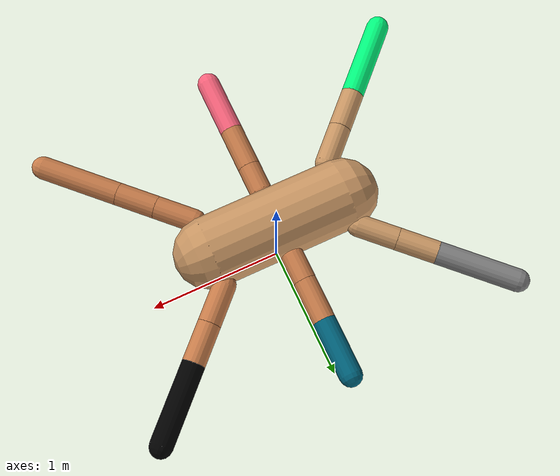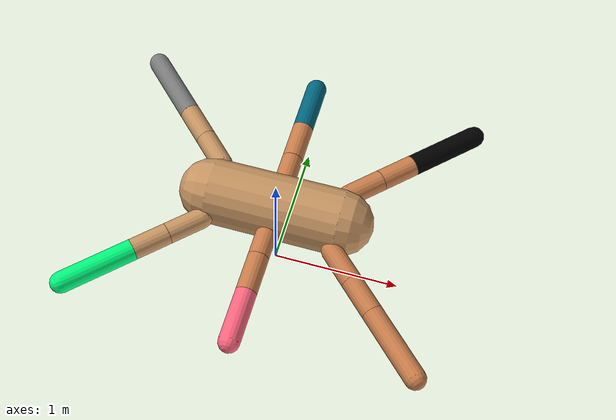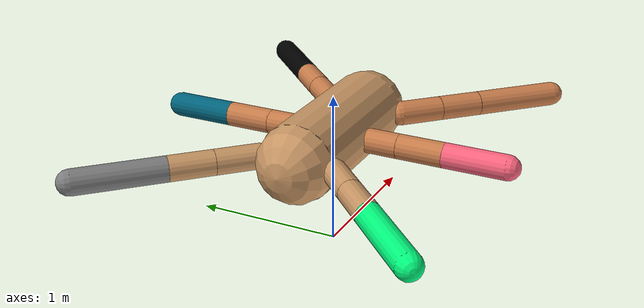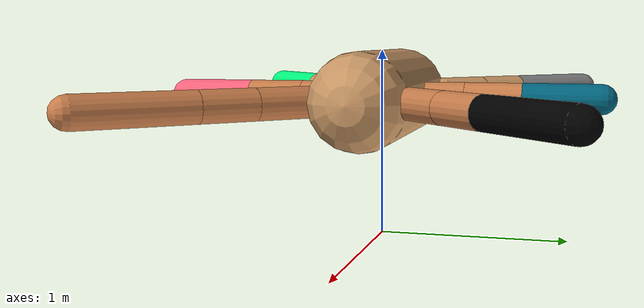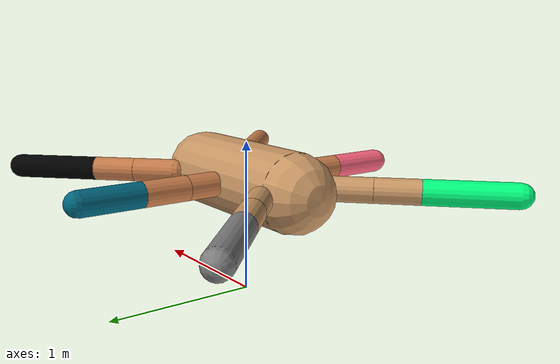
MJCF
<mujoco model="ant">
  <compiler angle="degree" coordinate="local" inertiafromgeom="true"/>
  <option integrator="RK4" timestep="0.01"/>
  <custom>
    <numeric data="0.0 0.0 0.55 1.0 0.0 0.0 0.0 0.0 1.0 0.0 -1.0 0.0 -1.0 0.0 1.0" name="init_qpos"/>
  </custom>
  <default>
    <joint armature="1" damping="1" limited="true"/>
    <geom conaffinity="0" condim="3" density="5.0" friction="1.5 0.1 0.1" margin="0.01" rgba="0.8 0.6 0.4 1"/>
  </default>
  <worldbody>
    <body name="torso" pos="0 0 0.75">
      <geom name="torso_geom" fromto="-0.5 0 0 0.5 0 0" size="0.25" type="capsule"/>
      <!--joint armature="0" damping="0" limited="false" margin="0.01" name="root" pos="0 0 0" type="free"/-->
      <body name="front_left_leg" pos="0.5 0.25 0">
        <geom fromto="0.0 0.0 0.0 0.2 0.2 0.0" name="aux_1_geom" size="0.08" type="capsule" rgba=".8 .5 .3 1"/>
        <body name="aux_1" pos="0.2 0.2 0">
          <joint axis="0 0 1" name="hip_1" pos="0.0 0.0 0.0" range="-40 40" type="hinge"/>
          <geom fromto="0.0 0.0 0.0 0.2 0.2 0.0" name="left_leg_geom" size="0.08" type="capsule" rgba=".8 .5 .3 1"/>
          <body pos="0.2 0.2 0" name="front_left_foot">
            <joint axis="-1 1 0" name="ankle_1" pos="0.0 0.0 0.0" range="30 100" type="hinge"/>
            <geom fromto="0.0 0.0 0.0 0.4 0.4 0.0" name="left_ankle_geom" size="0.08" type="capsule" rgba=".0 .0 .0 1"/>
          </body>
        </body>
      </body>
      <body name="front_right_leg" pos="0.5 -0.25 0">
        <geom fromto="0.0 0.0 0.0 0.2 -0.2 0.0" name="aux_4_geom" size="0.08" type="capsule" rgba=".8 .5 .3 1"/>
        <body name="aux_4" pos="0.2 -0.2 0">
          <joint axis="0 0 1" name="hip_4" pos="0.0 0.0 0.0" range="-40 40" type="hinge"/>
          <geom fromto="0.0 0.0 0.0 0.2 -0.2 0.0" name="front_right_leg_geom" size="0.08" type="capsule" rgba=".8 .5 .3 1"/>
          <body pos="0.2 -0.2 0" name="front_right_foot">
            <joint axis="1 1 0" name="ankle_4" pos="0.0 0.0 0.0" range="30 100" type="hinge"/>
            <geom fromto="0.0 0.0 0.0 0.4 -0.4 0.0" name="fourth_ankle_geom" size="0.08" type="capsule" rgba=".8 .5 .3 1"/>
          </body>
        </body>
      </body>
      <body name="mid_left_leg" pos="0.0 0.25 0">
        <geom fromto="0.0 0.0 0.0 0.0 0.2 0.0" name="aux_6_geom" size="0.08" type="capsule" rgba=".8 .5 .3 1"/>
        <body name="aux_6" pos="0.0 0.2 0">
          <joint axis="0 0 1" name="hip_6" pos="0.0 0.0 0.0" range="-45 45" type="hinge"/>
          <geom fromto="0.0 0.0 0.0 0.0 0.3 0.0" name="mid_left_leg_geom" size="0.08" type="capsule" rgba=".8 .5 .3 1"/>
          <body pos="0.0 0.3 0" name="mid_left_foot">
            <joint axis="-1 0 0" name="ankle_6" pos="0.0 0.0 0.0" range="30 100" type="hinge"/>
            <geom fromto="0.0 0.0 0.0 0.0 0.4 0.0" name="sixth_ankle_geom" size="0.08" type="capsule" rgba="0 .4 .5 1"/>
          </body>
        </body>
      </body>
      <body name="mid_right_leg" pos="0.0 -0.25 0">
        <geom fromto="0.0 0.0 0.0 0.0 -0.2 0.0" name="aux_5_geom" size="0.08" type="capsule" rgba=".8 .5 .3 1"/>
        <body name="aux_5" pos="0.0 -0.2 0">
          <joint axis="0 0 1" name="hip_5" pos="0.0 0.0 0.0" range="-45 45" type="hinge"/>
          <geom fromto="0.0 0.0 0.0 0.0 -0.3 0.0" name="mid_right_leg_geom" size="0.08" type="capsule" rgba=".8 .5 .3 1"/>
          <body pos="0.0 -0.3 0" name="mid_right_foot">
            <joint axis="1 0 0" name="ankle_5" pos="0.0 0.0 0.0" range="30 100" type="hinge"/>
            <geom fromto="0.0 0.0 0.0 0.0 -0.4 0.0" name="fith_ankle_geom" size="0.08" type="capsule" rgba="1 .4 .5 1"/>
          </body>
        </body>
      </body>
      <body name="back_left_leg" pos="-0.5 0.25 0">
        <geom fromto="0.0 0.0 0.0 -0.2 0.2 0.0" name="aux_2_geom" size="0.08" type="capsule"/>
        <body name="aux_2" pos="-0.2 0.2 0">
          <joint axis="0 0 1" name="hip_2" pos="0.0 0.0 0.0" range="-40 40" type="hinge"/>
          <geom fromto="0.0 0.0 0.0 -0.2 0.2 0.0" name="back_left_leg_geom" size="0.08" type="capsule"/>
          <body pos="-0.2 0.2 0" name="back_left_foot">
            <joint axis="1 1 0" name="ankle_2" pos="0.0 0.0 0.0" range="-100 -30" type="hinge"/>
            <geom fromto="0.0 0.0 0.0 -0.4 0.4 0.0" name="back_left_ankle_geom" size="0.08" type="capsule" rgba=".5 .5 .5 1"/>
          </body>
        </body>
      </body>
      <body name="back_right_leg" pos="-0.5 -0.25 0">
        <geom fromto="0.0 0.0 0.0 -0.2 -0.2 0.0" name="aux_3_geom" size="0.08" type="capsule"/>
        <body name="aux_3" pos="-0.2 -0.2 0">
          <joint axis="0 0 1" name="hip_3" pos="0.0 0.0 0.0" range="-40 40" type="hinge"/>
          <geom fromto="0.0 0.0 0.0 -0.2 -0.2 0.0" name="back_right_leg_geom" size="0.08" type="capsule"/>
          <body pos="-0.2 -0.2 0" name="back_right_foot">
            <joint axis="-1 1 0" name="ankle_3" pos="0.0 0.0 0.0" range="-100 -30" type="hinge"/>
            <geom fromto="0.0 0.0 0.0 -0.4 -0.4 0.0" name="third_ankle_geom" size="0.08" type="capsule" rgba="0 1 .5 1"/>
          </body>
        </body>
      </body>

    </body>
  </worldbody>
  <actuator>
    <motor ctrllimited="true" ctrlrange="-1.0 1.0" joint="hip_4" gear="150"/>
    <motor ctrllimited="true" ctrlrange="-1.0 1.0" joint="ankle_4" gear="150"/>
    <motor ctrllimited="true" ctrlrange="-1.0 1.0" joint="hip_1" gear="150"/>
    <motor ctrllimited="true" ctrlrange="-1.0 1.0" joint="ankle_1" gear="150"/>
    <motor ctrllimited="true" ctrlrange="-1.0 1.0" joint="hip_2" gear="150"/>
    <motor ctrllimited="true" ctrlrange="-1.0 1.0" joint="ankle_2" gear="150"/>
    <motor ctrllimited="true" ctrlrange="-1.0 1.0" joint="hip_3" gear="150"/>
    <motor ctrllimited="true" ctrlrange="-1.0 1.0" joint="ankle_3" gear="150"/>
    <motor ctrllimited="true" ctrlrange="-1.0 1.0" joint="hip5" gear="150"/>
    <motor ctrllimited="true" ctrlrange="-1.0 1.0" joint="ankle_5" gear="150"/>
    <motor ctrllimited="true" ctrlrange="-1.0 1.0" joint="hip6" gear="150"/>
    <motor ctrllimited="true" ctrlrange="-1.0 1.0" joint="ankle_6" gear="150"/>
  </actuator>
</mujoco>
